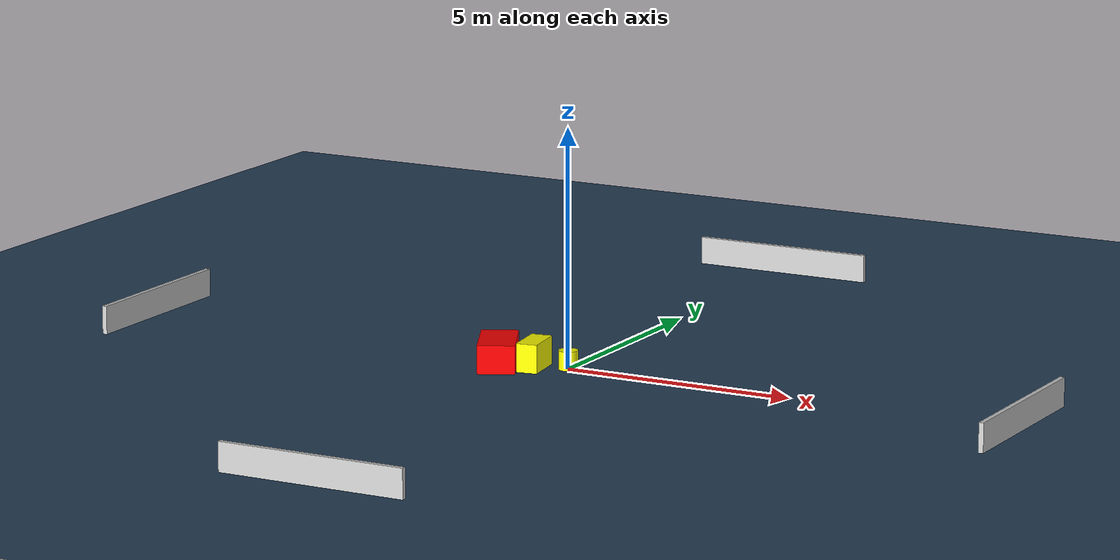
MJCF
<?xml version="1.0" ?>
<mujoco model="generated_environment">
  <option timestep="0.01" integrator="RK4" cone="elliptic"/>
  <default>
    <geom density="1"/>
  </default>
  <asset>
    <texture builtin="gradient" height="3072" name="skybox" rgb1="0.3 0.5 0.7" rgb2="0 0 0" type="skybox" width="512"/>
    <texture builtin="checker" height="300" name="groundplane" rgb1="0.2 0.3 0.4" rgb2="0.1 0.2 0.3" type="2d" width="300"/>
    <material name="groundplane" reflectance="0.2" texrepeat="5 5" texture="groundplane"/>
  </asset>
  <worldbody>
    <light dir="0 0 -1" directional="true" pos="0 0 1.5"/>
    <geom condim="3" friction="0.5 0.005 0.001" material="groundplane" name="floor" pos="0 0 0" size="0 0 0.05" type="plane"/>
    <body name="walls">
      <geom name="wall_1" condim="4" pos="-10.0 0.0 0.3" rgba="0.800000011920929 0.800000011920929 0.800000011920929 1.0" size="0.05 2.0 0.3" type="box"/>
      <geom name="wall_2" condim="4" pos="10.0 0.0 0.3" rgba="0.800000011920929 0.800000011920929 0.800000011920929 1.0" size="0.05 2.0 0.3" type="box"/>
      <geom name="wall_3" condim="4" pos="0.0 -10.0 0.3" rgba="0.800000011920929 0.800000011920929 0.800000011920929 1.0" size="2.0 0.05 0.3" type="box"/>
      <geom name="wall_4" condim="4" pos="0.0 10.0 0.3" rgba="0.800000011920929 0.800000011920929 0.800000011920929 1.0" size="2.0 0.05 0.3" type="box"/>
    </body>
    <body name="robot">
      <joint name="joint_x" type="slide" pos="0 0 0" axis="1 0 0"/>
      <joint name="joint_y" type="slide" pos="0 0 0" axis="0 1 0"/>
      <geom name="robot" type="cylinder" pos="0.0 0.0 0.2" size="0.2 0.2 0.0" mass="5.0" friction="1.0 0.005 0.0001" condim="4" rgba="1.0 1.0 0.0 1.0"/>
    </body>
    <body name="obstacle_1_movable">
      <geom name="obstacle_1_movable" condim="4" pos="-0.6526285904789304 -0.2565255256885675 0.3" euler="0 0 187.95445080020542" friction="0.0 0.005 0.001" rgba="1.0 1.0 0.0 1.0" size="0.22236099177424667 0.44993755528965873 0.3" type="box" mass="0.1"/>
      <joint type="free"/>
    </body>
    <body name="obstacle_2_static">
      <geom name="obstacle_2_static" condim="4" pos="-1.3735193169534359 -0.47812317377766567 0.3" euler="0 0 115.63711530597318" friction="0.0 0.005 0.001" rgba="1.0 0.0 0.0 1.0" size="0.6832947877686721 0.38896443070990805 0.3" type="box"/>
    </body>
  </worldbody>
  <actuator>
    <motor name="actuator_x" joint="joint_x" gear="1" ctrlrange="-1 1"/>
    <motor name="actuator_y" joint="joint_y" gear="1" ctrlrange="-1 1"/>
  </actuator>
</mujoco>
